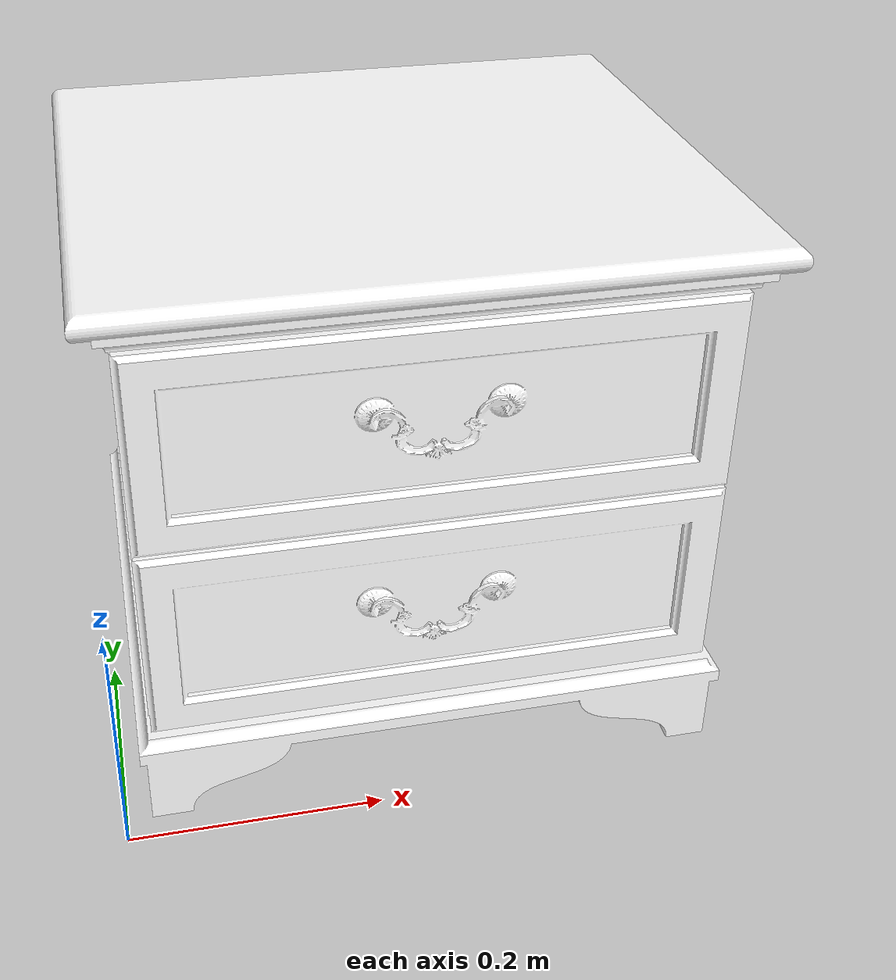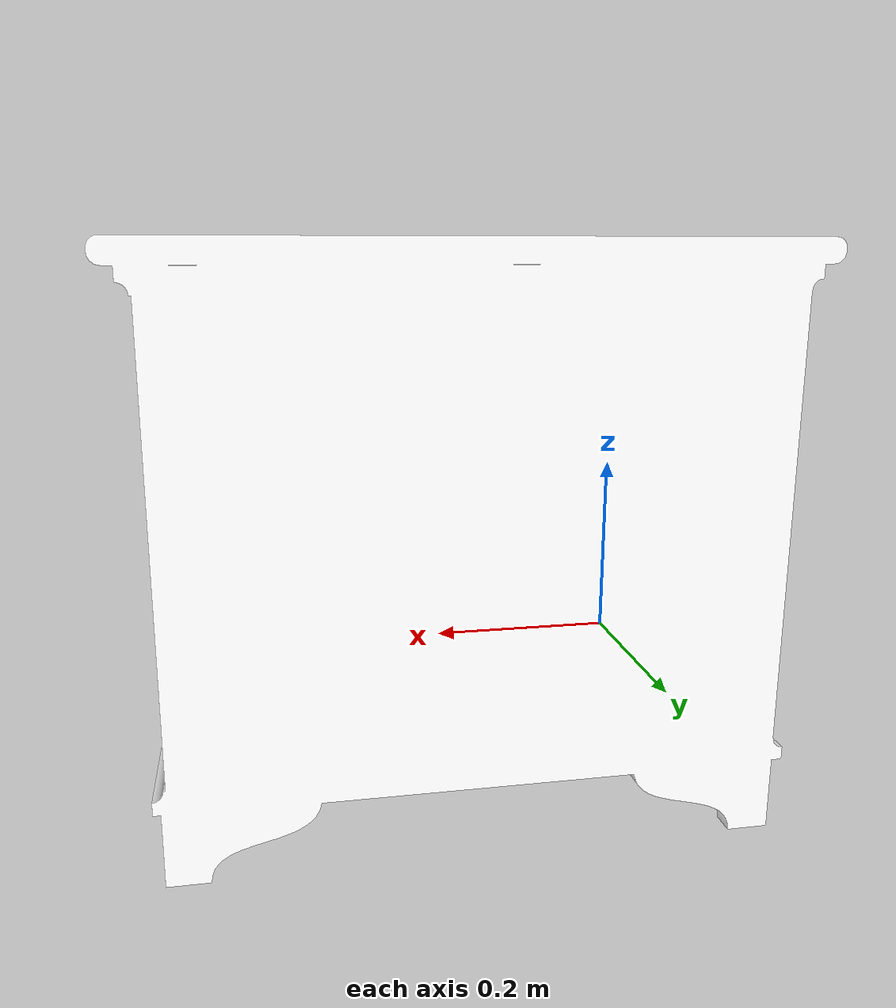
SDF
<?xml version='1.0'?>
<sdf version='1.7'>
  <model name='nightstand'>
    <link name='link'>
      <pose>0 0 0 0 0 0</pose>
      <visual name='visual'>
        <geometry>
          <mesh>
            <uri>/root/workspace/self_gazebo_models/nightstand/meshes/model.dae</uri>
          </mesh>
        </geometry>
        <material>
          <script>
	          <uri>/root/workspace/self_gazebo_models/nightstand/materials/scripts</uri>
            <uri>/root/workspace/self_gazebo_models/nightstand/materials/textures</uri>
            <name>Bedroom/nightstand</name>
          </script>
          <ambient>1 1 1 1</ambient>
        </material>
      </visual>
      <collision name='collision'>
        <geometry>
          <mesh>
            <uri>/root/workspace/self_gazebo_models/nightstand/meshes/model.dae</uri>
            <scale>1 1 1</scale>
          </mesh>
        </geometry>
      </collision>
    </link>
    <static>1</static>
    <allow_auto_disable>1</allow_auto_disable>
  </model>
</sdf>
